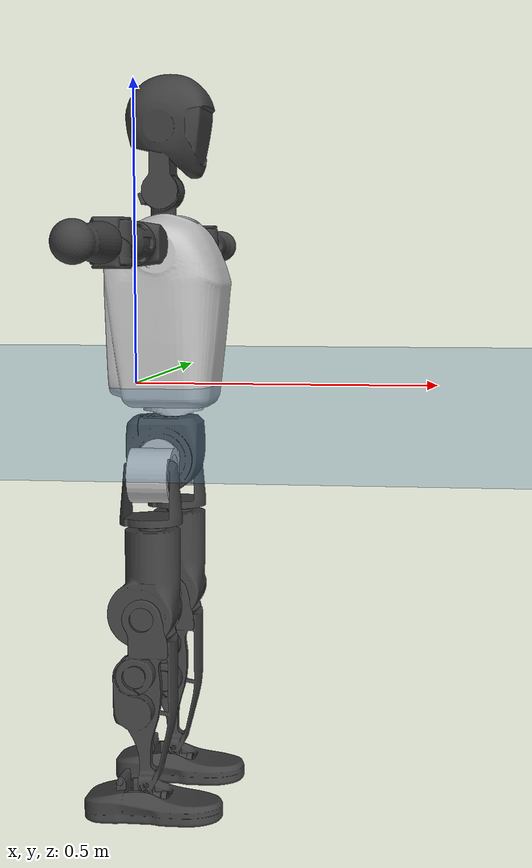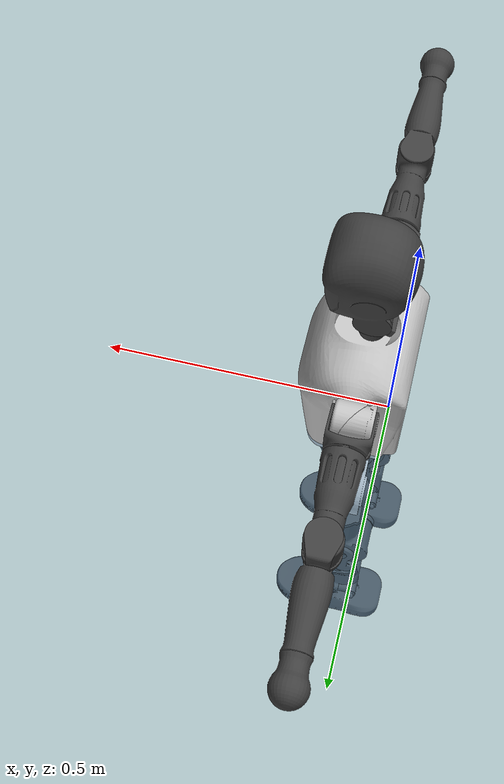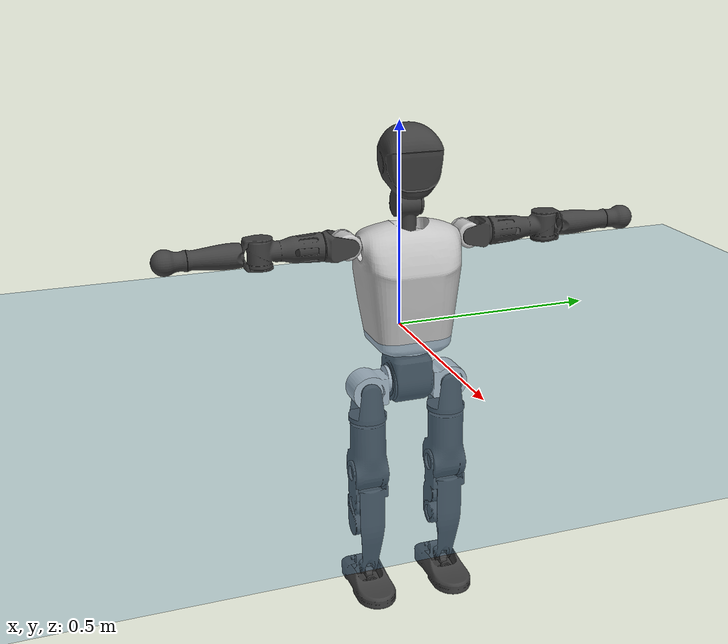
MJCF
<mujoco model="T1">
  <compiler angle="radian" assetdir="assets" balanceinertia="true" inertiafromgeom="false"/>

  <option timestep="0.005" density="1.2" viscosity="2e-05"/>

  <size nkey="1"/>

  <visual>
    <quality shadowsize="8192"/>
    <map shadowclip="0.5"/>
  </visual>

  <default>
    <default class="/">
      <joint armature="0.01" damping="0.01" frictionloss="0.1"/>
      <geom contype="0" conaffinity="0" group="1" solref="-1000 -80"/>
      <site size="0.01 0.005 0.005" group="5"/>
      <general forcelimited="true" biastype="affine" gainprm="25" biasprm="0 -25 -0.6"/>
      <default class="t1">
        <geom rgba="0.25 0.25 0.25 1"/>
        <default class="visual">
          <geom type="mesh" group="2"/>
        </default>
        <default class="collision">
          <geom group="3"/>
        </default>
        <default class="foot">
          <geom size="0.1115 0.05 0.015" type="box" condim="6" group="4" priority="1" solimp="0.015 1 0.015"/>
        </default>
        <default class="reward_collision_sphere">
          <geom group="5" rgba="1 0 0 1"/>
        </default>
      </default>
    </default>
  </default>

  <asset>
    <texture type="skybox" colorspace="auto" name="//unnamed_texture_0" builtin="gradient" rgb1="0.95 0.95 0.95" rgb2="0.95 0.95 0.95" width="100" height="600"/>
    <texture type="2d" colorspace="auto" name="texplane" builtin="checker" rgb1="0.345 0.575 0.748" rgb2="0.345 0.575 0.748" markrgb="1 1 1" width="512" height="512"/>
    <material name="MatPlane" class="/" texture="texplane" texuniform="true" texrepeat="2 2" specular="0.9"/>
    <mesh name="Trunk" class="/" file="Trunk.stl"/>
    <mesh name="H1" class="/" file="H1.stl"/>
    <mesh name="H2" class="/" file="H2.stl"/>
    <mesh name="AL1" class="/" file="AL1.stl"/>
    <mesh name="AL2" class="/" file="AL2.stl"/>
    <mesh name="AL3" class="/" file="AL3.stl"/>
    <mesh name="left_hand_link" class="/" file="left_hand_link.stl"/>
    <mesh name="AR1" class="/" file="AR1.stl"/>
    <mesh name="AR2" class="/" file="AR2.stl"/>
    <mesh name="AR3" class="/" file="AR3.stl"/>
    <mesh name="right_hand_link" class="/" file="right_hand_link.stl"/>
    <mesh name="Waist" class="/" file="Waist.stl"/>
    <mesh name="Hip_Pitch_Left" class="/" file="Hip_Pitch_Left.stl"/>
    <mesh name="Hip_Roll_Left" class="/" file="Hip_Roll_Left.stl"/>
    <mesh name="Hip_Yaw_Left" class="/" file="Hip_Yaw_Left.stl"/>
    <mesh name="Shank_Left" class="/" file="Shank_Left.stl"/>
    <mesh name="Ankle_Cross_Left" class="/" file="Ankle_Cross_Left.stl"/>
    <mesh name="left_foot_link" class="/" file="left_foot_link.stl"/>
    <mesh name="Hip_Pitch_Right" class="/" file="Hip_Pitch_Right.stl"/>
    <mesh name="Hip_Roll_Right" class="/" file="Hip_Roll_Right.stl"/>
    <mesh name="Hip_Yaw_Right" class="/" file="Hip_Yaw_Right.stl"/>
    <mesh name="Shank_Right" class="/" file="Shank_Right.stl"/>
    <mesh name="Ankle_Cross_Right" class="/" file="Ankle_Cross_Right.stl"/>
    <mesh name="right_foot_link" class="/" file="right_foot_link.stl"/>
  </asset>

  <worldbody>
    <geom name="floor" class="/" size="100 100 0.125" type="plane" group="0" material="MatPlane"/>
    <light name="toplight_shadow" class="/" pos="0 0 5" dir="0.0990148 0.0990148 -0.990148" type="directional" ambient="0.04 0.04 0.04" diffuse="0.55 0.55 0.55" specular="0.12 0.12 0.12"/>
    <light name="toplight_fill" class="/" pos="0 0 5" dir="0.0990148 0.0990148 -0.990148" type="directional" castshadow="false" ambient="0.04 0.04 0.04" diffuse="0.3 0.3 0.3" specular="0.08 0.08 0.08"/>
    <body name="trunk" childclass="t1" pos="1.93589e-07 0.000364497 -0.000801464" quat="1 -5.1759e-06 1.25918e-05 -1.69136e-05">
      <inertial pos="0.0429263 0.00031868 0.109462" quat="0.999958 -0.00383251 -0.00831702 0.00066796" mass="9.71445" diaginertia="0.0282239 0.0700699 0.0691667"/>
      <joint name="//unnamed_joint_0" type="free" armature="0" damping="0" frictionloss="0"/>
      <geom name="//unnamed_geom_1" class="visual" rgba="0.76 0.76 0.76 1" mesh="Trunk"/>
      <geom name="//unnamed_geom_2" class="collision" size="0.0703839 0.0938452 0.140768" pos="0.0474658 0 0.125282" type="box"/>
      <geom name="//unnamed_geom_3" class="reward_collision_sphere" size="0.107922" pos="0.0474658 0 0.104402"/>
      <geom name="//unnamed_geom_4" class="reward_collision_sphere" size="0.0140768" pos="0.0474658 0.0833209 0"/>
      <geom name="//unnamed_geom_5" class="reward_collision_sphere" size="0.0140768" pos="0.0474658 -0.0833209 0"/>
      <geom name="//unnamed_geom_6" class="reward_collision_sphere" size="0.0140768" pos="0.0474658 0.104886 0.187923"/>
      <geom name="//unnamed_geom_7" class="reward_collision_sphere" size="0.0140768" pos="0.0474658 -0.104886 0.187923"/>
      <site name="imu" pos="-0.000202318 -0.00228148 0.000525283" size="0.00938452"/>
      <camera name="track" pos="0 -1.96049 0" quat="0.707107 0.707107 0 0" mode="trackcom"/>
      <camera name="ego_camera" pos="0.0965137 0 0.438486" quat="-0.5 -0.5 0.5 0.5"/>
      <body name="H1" pos="0.0486631 0.000632915 0.25331" quat="1 -0.000283116 7.00348e-05 -0.000128157">
        <inertial pos="-0.00148814 -0.00208436 0.0598236" quat="0.764701 -0.0127537 0.00137848 0.644258" mass="0.366191" diaginertia="7.50303e-05 0.000200153 0.000184056"/>
        <joint name="AAHead_yaw" pos="0 0 0" axis="-6.20838e-06 3.30403e-05 1" range="-1.57383 1.57436" armature="0.00945899" damping="0.0125042" frictionloss="0.0977661"/>
        <geom name="//unnamed_geom_8" class="visual" mesh="H1"/>
        <body name="H2" pos="-0.000649677 -0.000405678 0.0637751" quat="1 -8.69113e-05 -0.000164763 -0.000116108">
          <inertial pos="0.00595139 6.90923e-05 0.102159" quat="0.989042 0.103462 -0.0716403 -0.0771989" mass="0.521187" diaginertia="0.00063169 0.00176484 0.00212692"/>
          <joint name="Head_pitch" pos="0 0 0" axis="0.00178337 -0.99999 0.00400794" range="-1.21213 0.355586" armature="0.00936125" damping="0.00354082" frictionloss="0.0944353"/>
          <geom name="//unnamed_geom_9" class="visual" mesh="H2"/>
          <geom name="//unnamed_geom_10" class="collision" size="0.0750762" pos="0.00791096 0 0.114842"/>
          <geom name="//unnamed_geom_11" class="reward_collision_sphere" size="0.0844607" pos="0.0158219 0 0.104402"/>
        </body>
      </body>
      <body name="AL1" pos="0.0458166 0.104718 0.229469" quat="1 -4.9622e-05 0.000428878 -4.24177e-05">
        <inertial pos="-0.000309758 0.0445524 -0.000213812" quat="0.504224 0.496261 -0.503106 0.496354" mass="0.440986" diaginertia="0.000430293 0.00118368 0.000367654"/>
        <joint name="Left_Shoulder_Pitch" pos="0 0 0" axis="8.48543e-05 0.999997 -0.00252456" stiffness="5.69133e-05" range="-3.30791 1.21856" armature="0.00982886" damping="0.0113799" frictionloss="0.0954584"/>
        <geom name="//unnamed_geom_12" class="visual" rgba="0.76 0.76 0.76 1" mesh="AL1"/>
        <body name="AL2" pos="0.000271633 0.0467568 0.000100874" quat="1 0.000102347 2.23913e-05 -5.16255e-08">
          <inertial pos="0.0032751 0.0364378 -0.000201229" quat="0.487014 0.509727 -0.488574 0.514092" mass="0.132764" diaginertia="0.000124483 0.000315125 0.000220839"/>
          <joint name="Left_Shoulder_Roll" pos="0 0 0" axis="-0.999998 0.000661424 0.00162775" stiffness="0.00189412" range="-1.57007 1.73141" armature="0.00898837" damping="0" frictionloss="0.0942523"/>
          <geom name="//unnamed_geom_13" class="visual" mesh="AL2"/>
          <body name="AL3" pos="0.00142308 0.0597664 0.000146825" quat="1 -2.8759e-05 0.000143879 6.75221e-06">
            <inertial pos="-0.000598316 0.0839812 -0.000520873" quat="0.70618 0.708029 0.00169475 -0.00125274" mass="0.846538" diaginertia="0.00398639 0.0117203 0.000771484"/>
            <joint name="Left_Elbow_Pitch" pos="0 0 0" axis="0.00181042 -0.999998 -0.0011921" range="-2.26848 2.27296" armature="0.00903491" damping="0.00863578" frictionloss="0.0948868"/>
            <geom name="//unnamed_geom_14" class="visual" mesh="AL3"/>
            <geom name="//unnamed_geom_15" class="collision" size="0.0281536 0.0703839" pos="0 0.0490123 0" quat="0.707105 0.707108 0 0" type="cylinder"/>
            <geom name="//unnamed_geom_16" class="reward_collision_sphere" size="0.0337843"/>
            <body name="left_hand_link" pos="0.00113303 0.144415 0.000715514" quat="1 -1.82676e-06 2.41849e-05 -3.86661e-06">
              <inertial pos="-0.000620532 0.106642 0.000214673" quat="0.707627 0.706582 0.00227232 -0.000697339" mass="0.271901" diaginertia="0.00252385 0.0072765 0.000267881"/>
              <joint name="Left_Elbow_Yaw" pos="0 0 0" axis="-9.96279e-05 -0.0002262 1" stiffness="0.000643213" range="-2.43567 0.00724443" armature="0.00967757" damping="0.0108959" frictionloss="0.0910288"/>
              <geom name="//unnamed_geom_17" class="visual" mesh="left_hand_link"/>
              <geom name="//unnamed_geom_18" class="collision" size="0.0281536 0.0821146" pos="0 0.127432 0" quat="0.707105 0.707108 0 0" type="cylinder"/>
              <geom name="//unnamed_geom_19" class="reward_collision_sphere" size="0.0469226"/>
              <geom name="//unnamed_geom_20" class="reward_collision_sphere" size="0.0328458" pos="0 0.107827 0"/>
              <geom name="//unnamed_geom_21" class="reward_collision_sphere" size="0.0328458" pos="0 0.210753 0"/>
            </body>
          </body>
        </body>
      </body>
      <body name="AR1" pos="0.0445163 -0.103599 0.228721" quat="1 1.30003e-05 0.000479093 -1.96281e-05">
        <inertial pos="-0.00137489 -0.0438975 -0.00012288" quat="0.505343 0.494041 -0.5043 0.496219" mass="0.434058" diaginertia="0.000422879 0.00117789 0.000362739"/>
        <joint name="Right_Shoulder_Pitch" pos="0 0 0" axis="-0.00163939 -0.99999 -0.00420491" stiffness="0.000828654" range="-1.22592 3.30577" armature="0.009157" damping="0.00416951" frictionloss="0.0937779"/>
        <geom name="//unnamed_geom_22" class="visual" rgba="0.76 0.76 0.76 1" mesh="AR1"/>
        <body name="AR2" pos="-0.000408753 -0.0447852 0.000535407" quat="1 -9.21445e-05 -6.42046e-05 9.6596e-05">
          <inertial pos="0.00214994 -0.0373276 0.000614076" quat="0.511225 0.487768 -0.512733 0.487684" mass="0.131834" diaginertia="0.000124168 0.000314328 0.000219379"/>
          <joint name="Right_Shoulder_Roll" pos="0 0 0" axis="-0.999935 0.00428107 -0.0105436" range="-1.73526 1.55513" armature="0.00925865" damping="0.00983646" frictionloss="0.0906724"/>
          <geom name="//unnamed_geom_23" class="visual" mesh="AR2"/>
          <body name="AR3" pos="9.99264e-05 -0.0590326 0.000859785" quat="1 -4.96519e-05 -9.67464e-05 -0.00023064">
            <inertial pos="-0.000322817 -0.0844837 -0.000253998" quat="0.708141 0.70607 0.000338076 -0.00133057" mass="0.841963" diaginertia="0.00402103 0.0116825 0.000778012"/>
            <joint name="Right_Elbow_Pitch" pos="0 0 0" axis="0.000493924 1 0.000339284" range="-2.25589 2.27901" armature="0.00950984" damping="0.00480728" frictionloss="0.0944454"/>
            <geom name="//unnamed_geom_24" class="visual" mesh="AR3"/>
            <geom name="//unnamed_geom_25" class="collision" size="0.0281536 0.0703839" pos="0 -0.0490123 0" quat="0.707105 0.707108 0 0" type="cylinder"/>
            <geom name="//unnamed_geom_26" class="reward_collision_sphere" size="0.0337843"/>
            <body name="right_hand_link" pos="-0.000455915 -0.143775 -0.000936722" quat="1 4.49045e-06 -1.74476e-05 0.000119286">
              <inertial pos="-0.000275984 -0.107152 0.00091118" quat="0.70738 0.706823 -0.00378345 0.000127867" mass="0.272496" diaginertia="0.00255436 0.00742331 0.000270125"/>
              <joint name="Right_Elbow_Yaw" pos="0 0 0" axis="-0.00241264 -0.000682599 0.999997" stiffness="0.000323848" range="0.000320587 2.42816" armature="0.00939172" damping="0.00648544" frictionloss="0.0951224"/>
              <geom name="//unnamed_geom_27" class="visual" mesh="right_hand_link"/>
              <geom name="//unnamed_geom_28" class="collision" size="0.0281536 0.0821146" pos="0 -0.127432 0" quat="0.707105 0.707108 0 0" type="cylinder"/>
              <geom name="//unnamed_geom_29" class="reward_collision_sphere" size="0.0469226"/>
              <geom name="//unnamed_geom_30" class="reward_collision_sphere" size="0.0328458" pos="0 -0.107827 0"/>
              <geom name="//unnamed_geom_31" class="reward_collision_sphere" size="0.0328458" pos="0 -0.210753 0"/>
            </body>
          </body>
        </body>
      </body>
      <body name="Waist" pos="0.0494741 -0.000472382 -0.119919" quat="1 -0.00025275 -0.000347622 2.07852e-05">
        <inertial pos="0.00179546 0.00024746 0.00802759" quat="0.98362 0.000534334 -0.180235 0.00265212" mass="2.09789" diaginertia="0.00165373 0.00476248 0.00583851"/>
        <joint name="Waist" pos="0 0 0" axis="0.00319465 0.00199869 0.999993" range="-1.57366 1.56877" armature="0.00954115" damping="0.0149569" frictionloss="0.094154"/>
        <geom name="//unnamed_geom_32" class="visual" mesh="Waist"/>
        <body name="Hip_Pitch_Left" pos="-0.000368216 0.103957 -0.000454496" quat="1 -9.14362e-06 4.14233e-05 -6.66375e-05">
          <inertial pos="0.000375315 -0.00774022 -0.0191443" quat="0.974717 0.222906 0.0154913 -6.01838e-05" mass="0.84536" diaginertia="0.000559471 0.00133178 0.00157178"/>
          <joint name="Left_Hip_Pitch" pos="0 0 0" axis="0.00011179 1 -0.000693119" range="-1.80529 1.57818" armature="0.00922554" damping="0.00687571" frictionloss="0.0937182"/>
          <geom name="//unnamed_geom_33" class="visual" rgba="0.76 0.76 0.76 1" mesh="Hip_Pitch_Left"/>
          <body name="Hip_Roll_Left" pos="0.000532256 -0.000198368 -0.02198" quat="1 -4.3809e-05 0.000260921 0.000309554">
            <inertial pos="0.00143063 0.00082868 -0.055599" quat="0.707173 -0.00651448 -0.00439314 0.706997" mass="0.318689" diaginertia="0.000546609 0.00138262 0.000639163"/>
            <joint name="Left_Hip_Roll" pos="0 0 0" axis="-1 -0.000139902 0.000357551" range="-1.55222 0.198097" armature="0.00921304" damping="0.0103099" frictionloss="0.0952464"/>
            <geom name="//unnamed_geom_34" class="visual" mesh="Hip_Roll_Left"/>
            <geom name="//unnamed_geom_35" class="reward_collision_sphere" size="0.0516149"/>
            <body name="Hip_Yaw_Left" pos="0.00172359 0.000176984 -0.0863941" quat="1 8.13936e-06 -4.13099e-05 8.80439e-05">
              <inertial pos="-0.00495421 -0.000586823 -0.092666" quat="0.696151 -0.0332033 -0.0318213 0.716421" mass="1.78539" diaginertia="0.00801224 0.0227612 0.00316464"/>
              <joint name="Left_Hip_Yaw" pos="0 0 0" axis="0.0025265 0.00243178 -0.999994" range="-0.996307 1.00771" armature="0.00942806" damping="0.00441627" frictionloss="0.0916943"/>
              <geom name="//unnamed_geom_36" class="visual" mesh="Hip_Yaw_Left"/>
              <geom name="//unnamed_geom_37" class="collision" size="0.0469226 0.0750762" type="cylinder"/>
              <body name="Shank_Left" pos="-0.0113046 -9.30555e-05 -0.140256" quat="1 1.28604e-05 -8.27515e-05 -2.60189e-05">
                <inertial pos="-0.00533516 0.00108005 -0.130214" quat="0.997464 0.00262022 -0.0235912 0.0670976" mass="1.44605" diaginertia="0.0107728 0.0317835 0.0023309"/>
                <joint name="Left_Knee_Pitch" pos="0 0 0" axis="-0.0015378 0.999991 0.00395509" range="-0.0149342 2.33437" armature="0.00946829" damping="0.00643391" frictionloss="0.0931611"/>
                <geom name="//unnamed_geom_38" class="visual" mesh="Shank_Left"/>
                <geom name="//unnamed_geom_39" class="collision" size="0.0469226 0.0703839" pos="0 0 -0.125282" type="cylinder"/>
                <geom name="//unnamed_geom_40" class="reward_collision_sphere" size="0.0609994"/>
                <body name="Ankle_Cross_Left" pos="0.000303306 0.000265432 -0.29231" quat="1 3.52594e-05 0.000260721 0.000184394">
                  <inertial pos="-0.00359735 0.000519271 -0.00773684" quat="0.442384 0.551305 0.550899 0.443699" mass="0.0599597" diaginertia="8.91806e-06 2.32295e-05 1.40353e-05"/>
                  <joint name="Left_Ankle_Pitch" pos="0 0 0" axis="0.000109378 0.999997 0.00259386" range="-0.875012 0.353476" armature="0.00923472" damping="0.00518252" frictionloss="0.0978692"/>
                  <geom name="//unnamed_geom_41" class="visual" mesh="Ankle_Cross_Left"/>
                  <body name="left_foot_link" pos="0.000112521 -0.00133027 -0.0125682" quat="1 -7.17374e-05 -4.77227e-06 -0.000133721">
                    <inertial pos="0.000115782 -0.000490589 -0.00967181" quat="-0.00322556 0.621606 -0.00250712 0.78332" mass="0.570418" diaginertia="0.000846024 0.0021511 0.00271184"/>
                    <joint name="Left_Ankle_Roll" pos="0 0 0" axis="-0.999998 -0.00075645 0.00193169" stiffness="3.9553e-05" range="-0.443617 0.439179" armature="0.00953551" damping="0.0076851" frictionloss="0.0945609"/>
                    <geom name="//unnamed_geom_42" class="visual" mesh="left_foot_link"/>
                    <geom name="left_foot" class="foot" size="0.101243 0.0444101 0.0140271" pos="0.00791096 0 -0.0156602"/>
                    <geom name="//unnamed_geom_44" class="reward_collision_sphere" size="0.0487995" pos="0.00791096 0 -0.0156602"/>
                    <geom name="//unnamed_geom_45" class="reward_collision_sphere" size="0.0281536" pos="0.0751541 -0.0225456 -0.0156602"/>
                    <geom name="//unnamed_geom_46" class="reward_collision_sphere" size="0.0281536" pos="-0.0553767 -0.0225456 -0.0156602"/>
                    <site name="left_foot" class="foot" pos="0.00791096 0 -0.0156602" size="0.00938452"/>
                  </body>
                </body>
              </body>
            </body>
          </body>
        </body>
        <body name="Hip_Pitch_Right" pos="-0.00115162 -0.103979 0.000517321" quat="1 -0.000156007 0.000314308 0.000215652">
          <inertial pos="0.000815006 0.00751914 -0.0187831" quat="0.97273 -0.231512 0.0137067 -0.00314309" mass="0.85011" diaginertia="0.000561743 0.00133266 0.00155746"/>
          <joint name="Right_Hip_Pitch" pos="0 0 0" axis="0.000515331 -0.999999 0.00106465" range="-1.56197 1.81624" armature="0.0096787" damping="0.00682122" frictionloss="0.0961959"/>
          <geom name="//unnamed_geom_47" class="visual" rgba="0.76 0.76 0.76 1" mesh="Hip_Pitch_Right"/>
          <body name="Hip_Roll_Right" pos="-0.00062618 0.00100286 -0.0213923" quat="1 -0.00014942 0.000222303 7.16232e-05">
            <inertial pos="0.00123239 -0.000223064 -0.0552094" quat="0.70592 -0.00595261 -0.00572139 0.708243" mass="0.317087" diaginertia="0.000536024 0.00136302 0.000634028"/>
            <joint name="Right_Hip_Roll" pos="0 0 0" axis="-0.999981 -0.00331992 -0.00523549" stiffness="0.001786" range="-0.195752 1.56856" armature="0.00929395" damping="0.00787968" frictionloss="0.0974849"/>
            <geom name="//unnamed_geom_48" class="visual" mesh="Hip_Roll_Right"/>
            <geom name="//unnamed_geom_49" class="reward_collision_sphere" size="0.0516149"/>
            <body name="Hip_Yaw_Right" pos="-0.000550824 0.000550534 -0.0861568" quat="1 -4.49869e-05 0.000131518 -4.90806e-05">
              <inertial pos="-0.00488664 -0.000873688 -0.0936849" quat="0.714267 -0.031899 -0.0336378 0.698337" mass="1.76454" diaginertia="0.00793905 0.0228048 0.0031768"/>
              <joint name="Right_Hip_Yaw" pos="0 0 0" axis="-0.000950986 0.000334369 -0.999999" range="-0.987762 0.990269" armature="0.00917038" damping="0.00784891" frictionloss="0.0937514"/>
              <geom name="//unnamed_geom_50" class="visual" mesh="Hip_Yaw_Right"/>
              <geom name="//unnamed_geom_51" class="collision" size="0.0469226 0.0750762" type="cylinder"/>
              <body name="Shank_Right" pos="-0.0111403 -0.000376898 -0.140388" quat="1 -1.25437e-06 -1.42584e-06 5.02171e-06">
                <inertial pos="-0.00464868 9.68106e-05 -0.127552" quat="0.999275 -0.00256285 -0.0226231 -0.0305001" mass="1.48938" diaginertia="0.0108998 0.0318878 0.00245931"/>
                <joint name="Right_Knee_Pitch" pos="0 0 0" axis="0.00120138 -0.999971 0.00753751" range="-2.3528 -0.00426838" armature="0.00939126" damping="0.00871563" frictionloss="0.094347"/>
                <geom name="//unnamed_geom_52" class="visual" mesh="Shank_Right"/>
                <geom name="//unnamed_geom_53" class="collision" size="0.0469226 0.0703839" pos="0 0 -0.125282" type="cylinder"/>
                <geom name="//unnamed_geom_54" class="reward_collision_sphere" size="0.0609994"/>
                <body name="Ankle_Cross_Right" pos="0.000313428 -9.20179e-05 -0.292663" quat="1 -0.000329166 0.000243405 -6.42955e-05">
                  <inertial pos="-0.00337158 0.000456513 -0.00827855" quat="0.443022 0.551084 0.550961 0.443259" mass="0.0605019" diaginertia="8.98253e-06 2.31205e-05 1.41222e-05"/>
                  <joint name="Right_Ankle_Pitch" pos="0 0 0" axis="0.000796979 -0.999999 -0.00150892" range="-0.36825 0.869709" armature="0.00941149" damping="0.0102823" frictionloss="0.0972156"/>
                  <geom name="//unnamed_geom_55" class="visual" mesh="Ankle_Cross_Right"/>
                  <body name="right_foot_link" pos="0.000960589 -0.00128959 -0.012727" quat="1 -3.99847e-05 -4.43931e-06 -2.11148e-05">
                    <inertial pos="-0.000566341 0.00087638 -0.00948785" quat="0.000287832 0.619111 -0.00374803 0.785294" mass="0.564815" diaginertia="0.000831237 0.00214612 0.00272581"/>
                    <joint name="Right_Ankle_Roll" pos="0 0 0" axis="-0.999999 -0.000459473 -0.00135468" range="-0.448416 0.432925" armature="0.00914349" damping="0.00935065" frictionloss="0.0941763"/>
                    <geom name="//unnamed_geom_56" class="visual" mesh="right_foot_link"/>
                    <geom name="right_foot" class="foot" size="0.101856 0.0462787 0.0143077" pos="0.00791096 0 -0.0156602"/>
                    <geom name="//unnamed_geom_58" class="reward_collision_sphere" size="0.0375381"/>
                    <geom name="//unnamed_geom_59" class="reward_collision_sphere" size="0.0281536" pos="0.00791096 0 -0.0156602"/>
                    <geom name="//unnamed_geom_60" class="reward_collision_sphere" size="0.0281536" pos="0.0751541 0.0225456 -0.0156602"/>
                    <geom name="//unnamed_geom_61" class="reward_collision_sphere" size="0.0281536" pos="-0.0553767 0.0225456 -0.0156602"/>
                    <site name="right_foot" class="foot" pos="0.00791096 0 -0.0156602" size="0.00938452"/>
                  </body>
                </body>
              </body>
            </body>
          </body>
        </body>
      </body>
    </body>
  </worldbody>

  <contact>
    <pair class="/" geom1="floor" geom2="left_foot" name="//unnamed_contact_0"/>
    <pair class="/" geom1="floor" geom2="right_foot" name="//unnamed_contact_1"/>
  </contact>

  <actuator>
    <general name="AAHead_yaw" class="/" joint="AAHead_yaw" forcerange="-6.36107 6.36107" gainprm="23.3968" biasprm="0 -23.3968 -0.565015"/>
    <general name="Head_pitch" class="/" joint="Head_pitch" forcerange="-6.36176 6.36176" gainprm="23.3968" biasprm="0 -23.3968 -0.565015"/>
    <general name="Left_Shoulder_Pitch" class="/" joint="Left_Shoulder_Pitch" forcerange="-16.891 16.891" gainprm="23.3968" biasprm="0 -23.3968 -0.565015"/>
    <general name="Left_Shoulder_Roll" class="/" joint="Left_Shoulder_Roll" forcerange="-16.6915 16.6915" gainprm="23.3968" biasprm="0 -23.3968 -0.565015"/>
    <general name="Left_Elbow_Pitch" class="/" joint="Left_Elbow_Pitch" forcerange="-16.8454 16.8454" gainprm="23.3968" biasprm="0 -23.3968 -0.565015"/>
    <general name="Left_Elbow_Yaw" class="/" joint="Left_Elbow_Yaw" forcerange="-17.5597 17.5597" gainprm="23.3968" biasprm="0 -23.3968 -0.565015"/>
    <general name="Right_Shoulder_Pitch" class="/" joint="Right_Shoulder_Pitch" forcerange="-16.9677 16.9677" gainprm="23.3968" biasprm="0 -23.3968 -0.565015"/>
    <general name="Right_Shoulder_Roll" class="/" joint="Right_Shoulder_Roll" forcerange="-16.8065 16.8065" gainprm="23.3968" biasprm="0 -23.3968 -0.565015"/>
    <general name="Right_Elbow_Pitch" class="/" joint="Right_Elbow_Pitch" forcerange="-16.8831 16.8831" gainprm="23.3968" biasprm="0 -23.3968 -0.565015"/>
    <general name="Right_Elbow_Yaw" class="/" joint="Right_Elbow_Yaw" forcerange="-16.7442 16.7442" gainprm="23.3968" biasprm="0 -23.3968 -0.565015"/>
    <general name="Waist" class="/" joint="Waist" forcerange="-27.905 27.905" gainprm="23.3968" biasprm="0 -23.3968 -0.565015"/>
    <general name="Left_Hip_Pitch" class="/" joint="Left_Hip_Pitch" forcerange="-41.8503 41.8503" gainprm="23.3968" biasprm="0 -23.3968 -0.565015"/>
    <general name="Left_Hip_Roll" class="/" joint="Left_Hip_Roll" forcerange="-27.7622 27.7622" gainprm="23.3968" biasprm="0 -23.3968 -0.565015"/>
    <general name="Left_Hip_Yaw" class="/" joint="Left_Hip_Yaw" forcerange="-27.8 27.8" gainprm="23.3968" biasprm="0 -23.3968 -0.565015"/>
    <general name="Left_Knee_Pitch" class="/" joint="Left_Knee_Pitch" forcerange="-54.2961 54.2961" gainprm="23.3968" biasprm="0 -23.3968 -0.565015"/>
    <general name="Left_Ankle_Pitch" class="/" joint="Left_Ankle_Pitch" forcerange="-18.2574 18.2574" gainprm="23.3968" biasprm="0 -23.3968 -0.565015"/>
    <general name="Left_Ankle_Roll" class="/" joint="Left_Ankle_Roll" forcerange="-14.2331 14.2331" gainprm="23.3968" biasprm="0 -23.3968 -0.565015"/>
    <general name="Right_Hip_Pitch" class="/" joint="Right_Hip_Pitch" forcerange="-42.3645 42.3645" gainprm="23.3968" biasprm="0 -23.3968 -0.565015"/>
    <general name="Right_Hip_Roll" class="/" joint="Right_Hip_Roll" forcerange="-28.853 28.853" gainprm="23.3968" biasprm="0 -23.3968 -0.565015"/>
    <general name="Right_Hip_Yaw" class="/" joint="Right_Hip_Yaw" forcerange="-28.9155 28.9155" gainprm="23.3968" biasprm="0 -23.3968 -0.565015"/>
    <general name="Right_Knee_Pitch" class="/" joint="Right_Knee_Pitch" forcerange="-54.9932 54.9932" gainprm="23.3968" biasprm="0 -23.3968 -0.565015"/>
    <general name="Right_Ankle_Pitch" class="/" joint="Right_Ankle_Pitch" forcerange="-18.2232 18.2232" gainprm="23.3968" biasprm="0 -23.3968 -0.565015"/>
    <general name="Right_Ankle_Roll" class="/" joint="Right_Ankle_Roll" forcerange="-14.1274 14.1274" gainprm="23.3968" biasprm="0 -23.3968 -0.565015"/>
  </actuator>

  <sensor>
    <gyro site="imu" name="imu_angular_velocity"/>
    <velocimeter site="imu" name="imu_linear_velocity"/>
    <framelinvel objtype="site" objname="left_foot" name="left_foot_global_linear_velocity"/>
    <framelinvel objtype="site" objname="right_foot" name="right_foot_global_linear_velocity"/>
  </sensor>

  <keyframe>
    <key name="home" qpos="0 0 0.6385 1 0 0 0 0 0 0 1.4 0 -0.4 0 -1.4 0 0.4 0 -0.4 0 0 0.8 -0.4 0 0.4 0 0 -0.8 0.4 0"/>
  </keyframe>
</mujoco>
